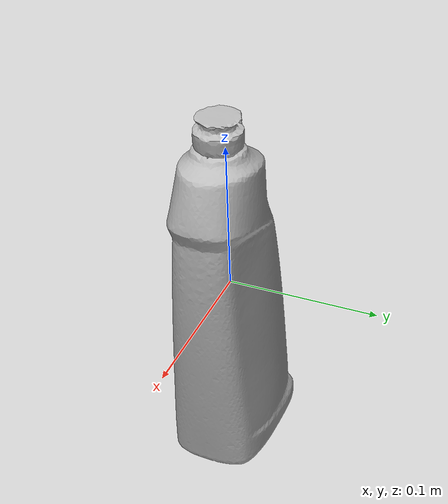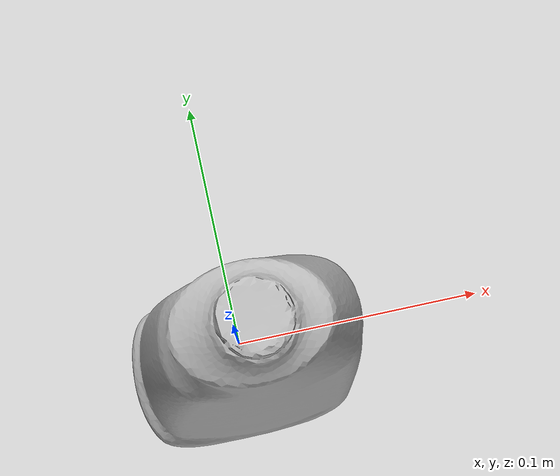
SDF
<?xml version="1.0" ?>
<sdf version="1.7">
<!--
This SDF file was automatically generated using a template modified
and authored by Jinjian Li. The moment of interia is not supposed to be changed.
-->
    <model name="obj_000012">
      <pose>0.0 0.0 0.0 0.0 0.0 0.0</pose>
      <link name="link">
        <inertial>
          <inertia>
           <ixx>0.0063445266083220105</ixx>
           <ixy>5.13290384785163e-06</ixy>
           <ixz>-0.0003672224759980201</ixz>
           <iyy>0.006841718217999902</iyy>
           <iyz>3.1842076666660635e-06</iyz>
           <izz>0.0011725546356924884</izz>
          </inertia>
          <mass>1.4576458741461915</mass>
        </inertial>
        <collision name="collision">
          <geometry>
            <mesh>
             <uri>obj_000012.obj</uri>
             <scale>1 1 1</scale>
            </mesh>
          </geometry>
        </collision>

        <visual name="visual">
          <geometry>
            <mesh>
             <uri>obj_000012.obj</uri>
             <scale>1 1 1</scale>
            </mesh>
          </geometry>
        </visual>
      </link>
    </model>
</sdf>
